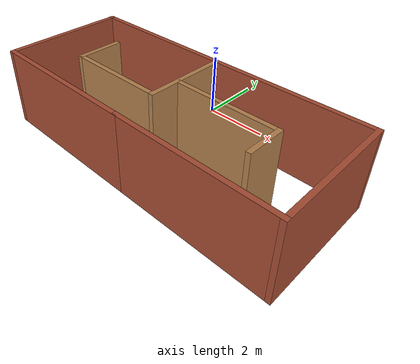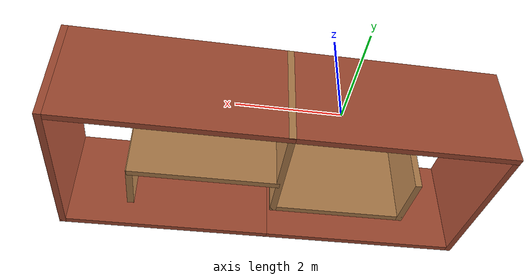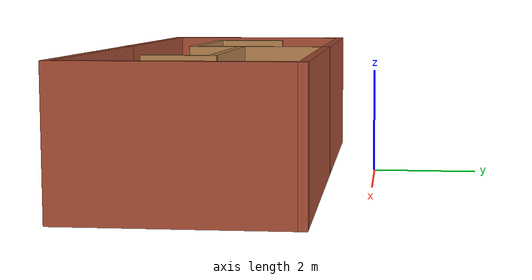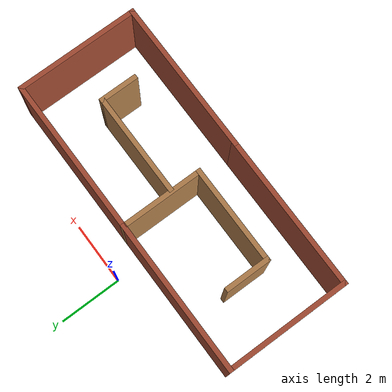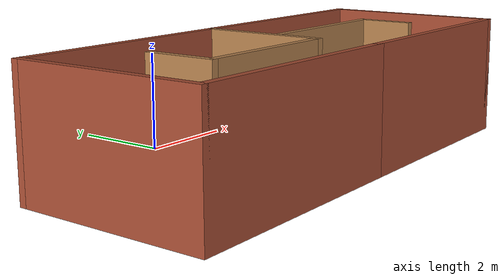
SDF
<?xml version='1.0'?>
<sdf version='1.7'>
  <model name='house1'>
    <pose>0.83 -2.4225 0 0 -0 0</pose>
    <link name='Wall_0'>
      <collision name='Wall_0_Collision'>
        <geometry>
          <box>
            <size>5 0.15 2.5</size>
          </box>
        </geometry>
        <pose>0 0 1.25 0 -0 0</pose>
      </collision>
      <visual name='Wall_0_Visual'>
        <pose>0 0 1.25 0 -0 0</pose>
        <geometry>
          <box>
            <size>5 0.15 2.5</size>
          </box>
        </geometry>
        <material>
          <script>
            <uri>file://media/materials/scripts/gazebo.material</uri>
            <name>Gazebo/Bricks</name>
          </script>
          <ambient>1 1 1 1</ambient>
        </material>
        <meta>
          <layer>0</layer>
        </meta>
      </visual>
      <pose>-2.425 -2.3475 0 0 -0 0</pose>
    </link>
    <link name='Wall_15'>
      <collision name='Wall_15_Collision'>
        <geometry>
          <box>
            <size>2.72022 0.15 2.5</size>
          </box>
        </geometry>
        <pose>0 0 1.25 0 -0 0</pose>
      </collision>
      <visual name='Wall_15_Visual'>
        <pose>0 0 1.25 0 -0 0</pose>
        <geometry>
          <box>
            <size>2.72022 0.15 2.5</size>
          </box>
        </geometry>
        <material>
          <script>
            <uri>file://media/materials/scripts/gazebo.material</uri>
            <name>Gazebo/Wood</name>
          </script>
          <ambient>1 1 1 1</ambient>
        </material>
        <meta>
          <layer>0</layer>
        </meta>
      </visual>
      <pose>-0.05247 0.217421 0 0 -0 -1.5708</pose>
    </link>
    <link name='Wall_16'>
      <collision name='Wall_16_Collision'>
        <geometry>
          <box>
            <size>3.16769 0.15 2.5</size>
          </box>
        </geometry>
        <pose>0 0 1.25 0 -0 0</pose>
      </collision>
      <visual name='Wall_16_Visual'>
        <pose>0 0 1.25 0 -0 0</pose>
        <geometry>
          <box>
            <size>3.16769 0.15 2.5</size>
          </box>
        </geometry>
        <material>
          <script>
            <uri>file://media/materials/scripts/gazebo.material</uri>
            <name>Gazebo/Wood</name>
          </script>
          <ambient>1 1 1 1</ambient>
        </material>
        <meta>
          <layer>0</layer>
        </meta>
      </visual>
      <pose>-1.56132 -1.06766 0 0 -0 3.14159</pose>
    </link>
    <link name='Wall_17'>
      <collision name='Wall_17_Collision'>
        <geometry>
          <box>
            <size>1.47016 0.15 2.5</size>
          </box>
        </geometry>
        <pose>0 0 1.25 0 -0 0</pose>
      </collision>
      <visual name='Wall_17_Visual'>
        <pose>0 0 1.25 0 -0 0</pose>
        <geometry>
          <box>
            <size>1.47016 0.15 2.5</size>
          </box>
        </geometry>
        <material>
          <script>
            <uri>file://media/materials/scripts/gazebo.material</uri>
            <name>Gazebo/Wood</name>
          </script>
          <ambient>1 1 1 1</ambient>
        </material>
        <meta>
          <layer>0</layer>
        </meta>
      </visual>
      <pose>-3.10514 -0.407579 0 0 -0 1.5708</pose>
    </link>
    <link name='Wall_19'>
      <collision name='Wall_19_Collision'>
        <geometry>
          <box>
            <size>3.3251 0.15 2.5</size>
          </box>
        </geometry>
        <pose>0 0 1.25 0 -0 0</pose>
      </collision>
      <visual name='Wall_19_Visual'>
        <pose>0 0 1.25 0 -0 0</pose>
        <geometry>
          <box>
            <size>3.3251 0.15 2.5</size>
          </box>
        </geometry>
        <material>
          <script>
            <uri>file://media/materials/scripts/gazebo.material</uri>
            <name>Gazebo/Wood</name>
          </script>
          <ambient>1 1 1 1</ambient>
        </material>
        <meta>
          <layer>0</layer>
        </meta>
      </visual>
      <pose>1.60755 -0.1275 0 0 -0 0</pose>
    </link>
    <link name='Wall_2'>
      <collision name='Wall_2_Collision'>
        <geometry>
          <box>
            <size>4.94753 0.15 2.5</size>
          </box>
        </geometry>
        <pose>0 0 1.25 0 -0 0</pose>
      </collision>
      <visual name='Wall_2_Visual'>
        <pose>0 0 1.25 0 -0 0</pose>
        <geometry>
          <box>
            <size>4.94753 0.15 2.5</size>
          </box>
        </geometry>
        <material>
          <script>
            <uri>file://media/materials/scripts/gazebo.material</uri>
            <name>Gazebo/Bricks</name>
          </script>
          <ambient>1 1 1 1</ambient>
        </material>
        <meta>
          <layer>0</layer>
        </meta>
      </visual>
      <pose>-2.45124 1.5025 0 0 -0 3.14159</pose>
    </link>
    <link name='Wall_20'>
      <collision name='Wall_20_Collision'>
        <geometry>
          <box>
            <size>1.25 0.15 2.5</size>
          </box>
        </geometry>
        <pose>0 0 1.25 0 -0 0</pose>
      </collision>
      <visual name='Wall_20_Visual'>
        <pose>0 0 1.25 0 -0 0</pose>
        <geometry>
          <box>
            <size>1.25 0.15 2.5</size>
          </box>
        </geometry>
        <material>
          <script>
            <uri>file://media/materials/scripts/gazebo.material</uri>
            <name>Gazebo/Wood</name>
          </script>
          <ambient>1 1 1 1</ambient>
        </material>
        <meta>
          <layer>0</layer>
        </meta>
      </visual>
      <pose>3.21259 -0.6775 0 0 -0 -1.5708</pose>
    </link>
    <link name='Wall_3'>
      <collision name='Wall_3_Collision'>
        <geometry>
          <box>
            <size>4 0.15 2.5</size>
          </box>
        </geometry>
        <pose>0 0 1.25 0 -0 0</pose>
      </collision>
      <visual name='Wall_3_Visual'>
        <pose>0 0 1.25 0 -0 0</pose>
        <geometry>
          <box>
            <size>4 0.15 2.5</size>
          </box>
        </geometry>
        <material>
          <script>
            <uri>file://media/materials/scripts/gazebo.material</uri>
            <name>Gazebo/Bricks</name>
          </script>
          <ambient>1 1 1 1</ambient>
        </material>
        <meta>
          <layer>0</layer>
        </meta>
      </visual>
      <pose>-4.85 -0.4225 0 0 -0 -1.5708</pose>
    </link>
    <link name='Wall_5'>
      <collision name='Wall_5_Collision'>
        <geometry>
          <box>
            <size>5 0.15 2.5</size>
          </box>
        </geometry>
        <pose>0 0 1.25 0 -0 0</pose>
      </collision>
      <visual name='Wall_5_Visual'>
        <pose>0 0 1.25 0 -0 0</pose>
        <geometry>
          <box>
            <size>5 0.15 2.5</size>
          </box>
        </geometry>
        <material>
          <script>
            <uri>file://media/materials/scripts/gazebo.material</uri>
            <name>Gazebo/Bricks</name>
          </script>
          <ambient>1 1 1 1</ambient>
        </material>
        <meta>
          <layer>0</layer>
        </meta>
      </visual>
      <pose>2.425 -2.3475 0 0 -0 0</pose>
    </link>
    <link name='Wall_6'>
      <collision name='Wall_6_Collision'>
        <geometry>
          <box>
            <size>4 0.15 2.5</size>
          </box>
        </geometry>
        <pose>0 0 1.25 0 -0 0</pose>
      </collision>
      <visual name='Wall_6_Visual'>
        <pose>0 0 1.25 0 -0 0</pose>
        <geometry>
          <box>
            <size>4 0.15 2.5</size>
          </box>
        </geometry>
        <material>
          <script>
            <uri>file://media/materials/scripts/gazebo.material</uri>
            <name>Gazebo/Bricks</name>
          </script>
          <ambient>1 1 1 1</ambient>
        </material>
        <meta>
          <layer>0</layer>
        </meta>
      </visual>
      <pose>4.85 -0.4225 0 0 -0 1.5708</pose>
    </link>
    <link name='Wall_7'>
      <collision name='Wall_7_Collision'>
        <geometry>
          <box>
            <size>5.05247 0.15 2.5</size>
          </box>
        </geometry>
        <pose>0 0 1.25 0 -0 0</pose>
      </collision>
      <visual name='Wall_7_Visual'>
        <pose>0 0 1.25 0 -0 0</pose>
        <geometry>
          <box>
            <size>5.05247 0.15 2.5</size>
          </box>
        </geometry>
        <material>
          <script>
            <uri>file://media/materials/scripts/gazebo.material</uri>
            <name>Gazebo/Bricks</name>
          </script>
          <ambient>1 1 1 1</ambient>
        </material>
        <meta>
          <layer>0</layer>
        </meta>
      </visual>
      <pose>2.39877 1.5025 0 0 -0 3.14159</pose>
    </link>
    <static>1</static>
  </model>
</sdf>
